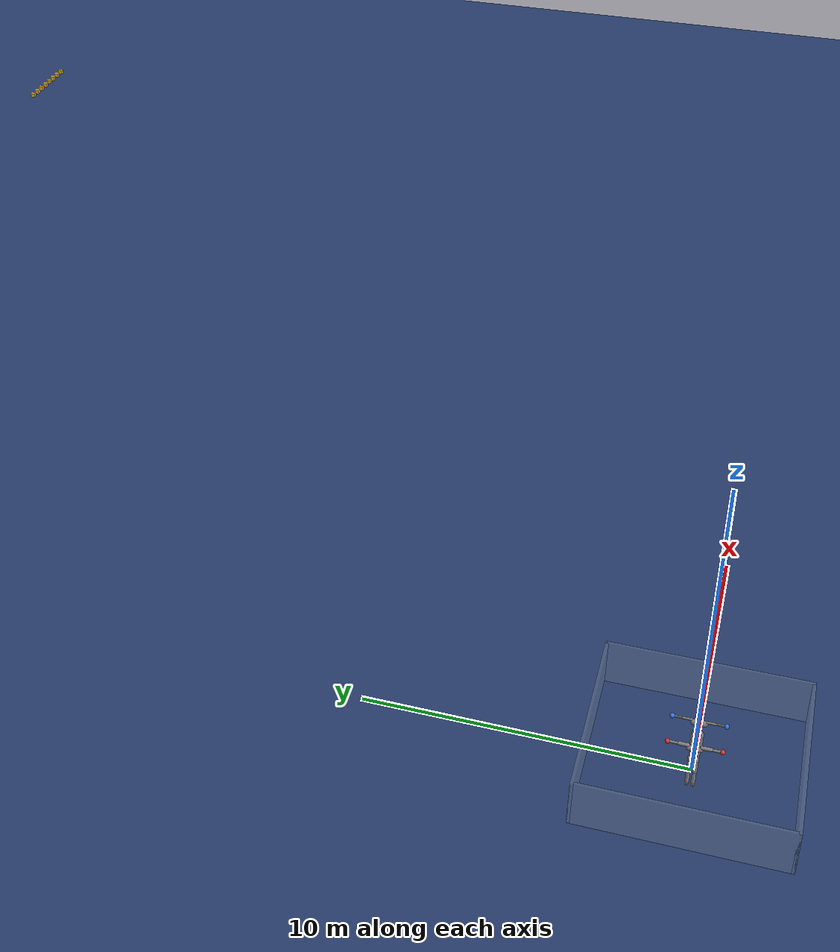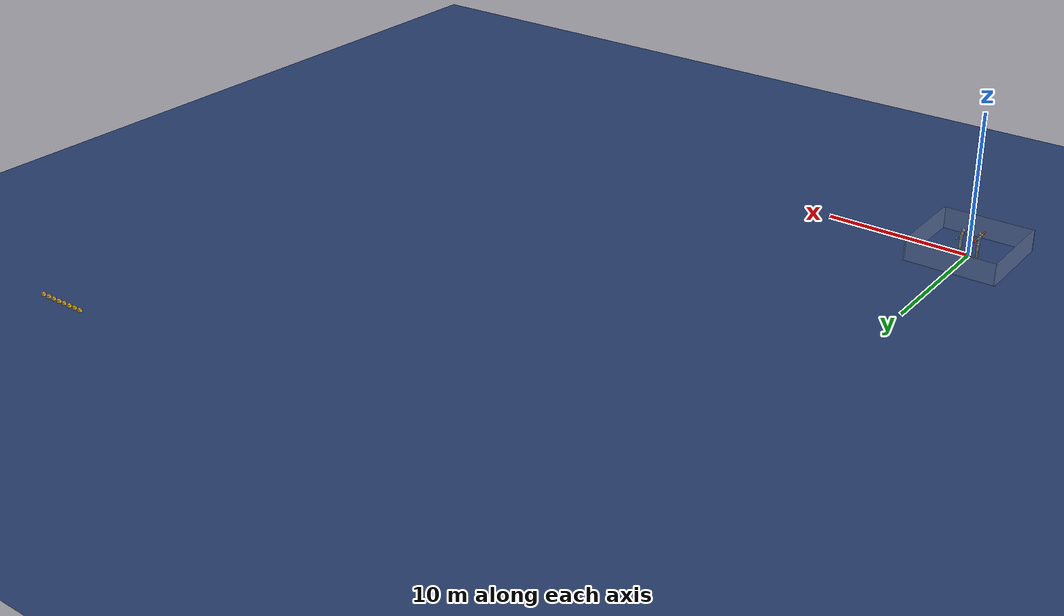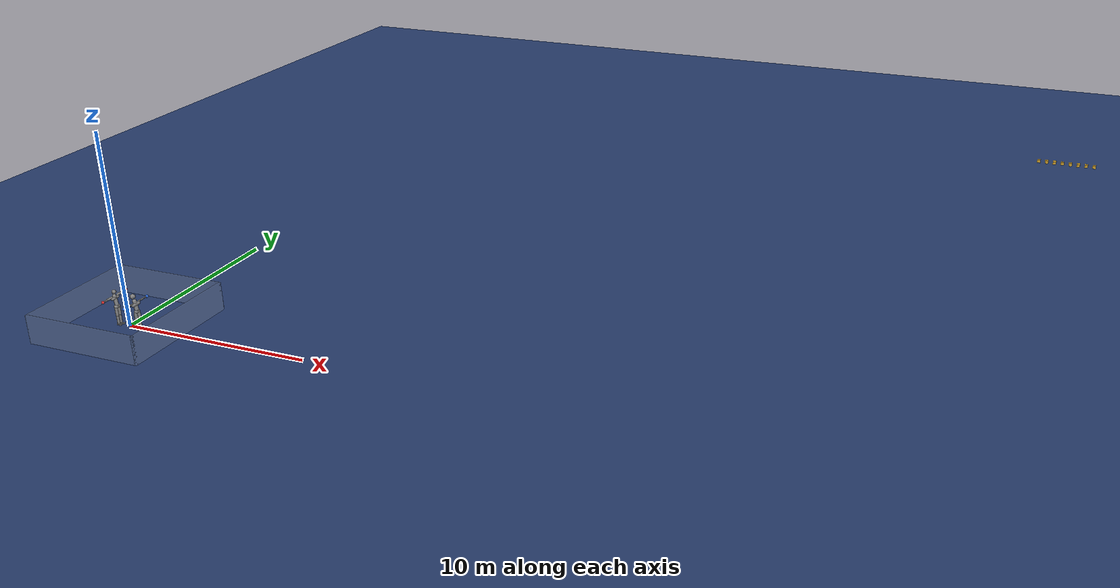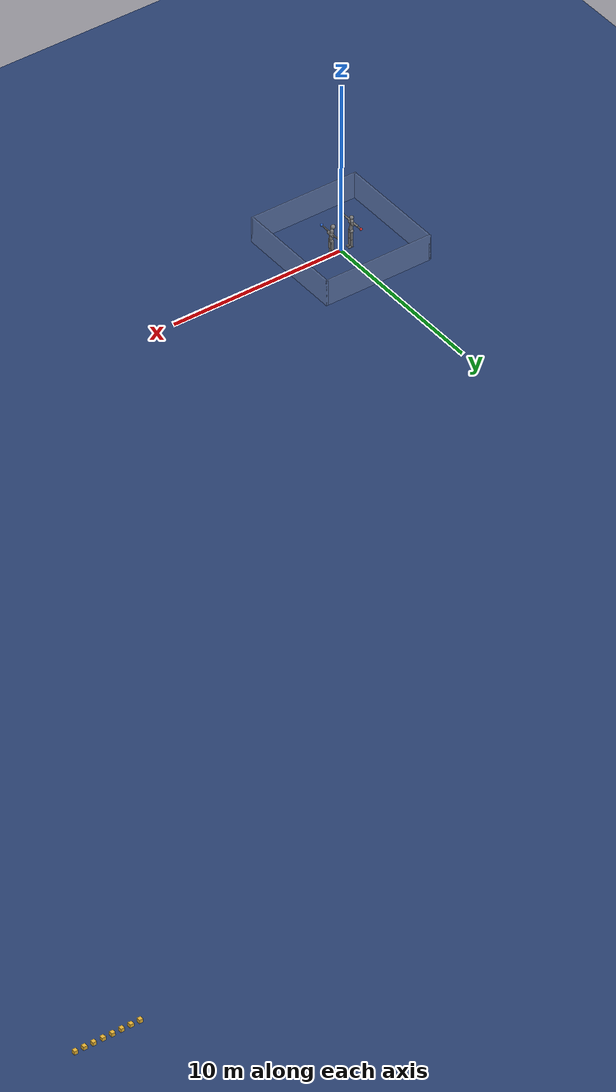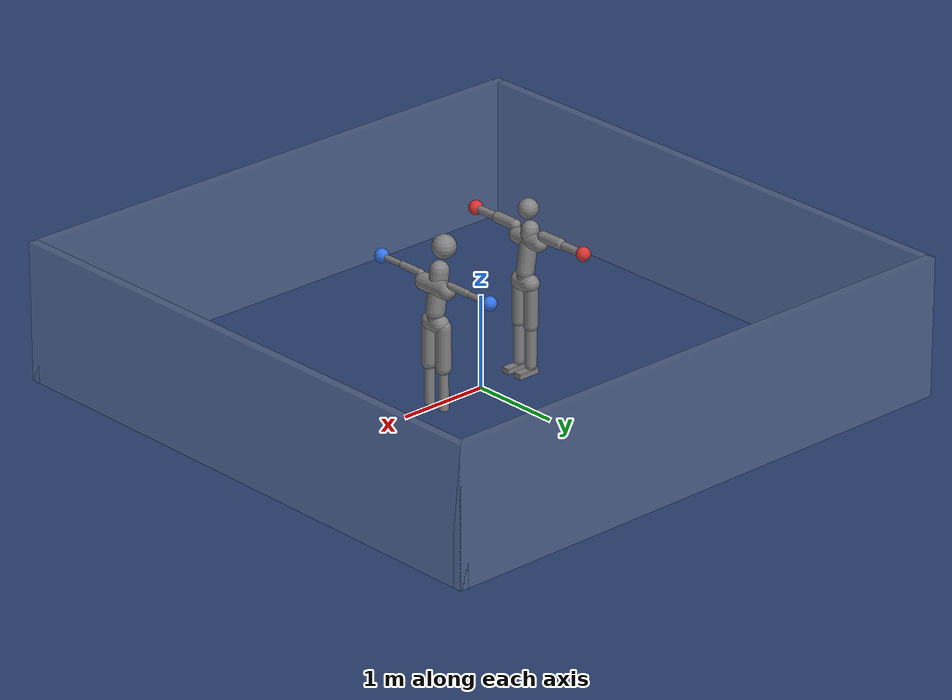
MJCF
<mujoco model="matt_vs_zombie_spar">
  <compiler angle="degree" inertiafromgeom="true" autolimits="true"/>
  <option timestep="0.005" iterations="10" ls_iterations="10" integrator="implicitfast">
    <flag eulerdamp="disable"/>
  </option>
  <default>
    <geom contype="1" conaffinity="1" condim="3" friction="1.0 0.005 0.0001" density="1000" margin="0"/>
    <joint limited="true"/>
    <position ctrllimited="true"/>
  </default>
  <asset>
    <texture name="grid" type="2d" builtin="checker" rgb1=".18 .28 .48" rgb2=".14 .22 .40" width="300" height="300"/>
    <material name="grid" texture="grid" texrepeat="6 6" reflectance="0"/>
  </asset>
  <worldbody>
    <light pos="0 0 5" dir="0 0 -1" directional="true"/>
    <geom name="floor" type="plane" size="0 0 0.05" material="grid" friction="1.0 0.005 0.0001"/>
    <geom name="rope_n" type="box" pos="0.0000 3.1000 0.7500" size="3.1500 0.0500 0.7500" rgba="0.8 0.8 0.8 0.15"/>
    <geom name="rope_s" type="box" pos="0.0000 -3.1000 0.7500" size="3.1500 0.0500 0.7500" rgba="0.8 0.8 0.8 0.15"/>
    <geom name="rope_e" type="box" pos="3.1000 0.0000 0.7500" size="0.0500 3.1500 0.7500" rgba="0.8 0.8 0.8 0.15"/>
    <geom name="rope_w" type="box" pos="-3.1000 0.0000 0.7500" size="0.0500 3.1500 0.7500" rgba="0.8 0.8 0.8 0.15"/>
    <body name="a_pelvis" pos="-0.6000 0.0000 0.9733" quat="1.00000 0 0 0.00000">
      <freejoint name="a_root"/>
      <geom name="a_pelvis_geom" type="capsule" fromto="0.0000 -0.0700 0.0000 0.0000 0.0700 0.0000" size="0.0976" mass="7.5566" />
      <geom name="a_pelvis_up" type="capsule" fromto="0.0000 0.0000 0.0000 -0.0008 0.0000 0.0758" size="0.0878" mass="4.3714" />
      <body name="a_torso" pos="-0.0008 0.0000 0.0958">
        <joint name="a_abdomen_z" type="hinge" axis="0 0 1" range="-45 45" damping="0.5" armature="0.08" stiffness="0"/>
        <joint name="a_abdomen_y" type="hinge" axis="0 1 0" range="-60 30" damping="0.5" armature="0.08" stiffness="0"/>
        <joint name="a_abdomen_x" type="hinge" axis="1 0 0" range="-35 35" damping="0.5" armature="0.08" stiffness="0"/>
        <geom name="a_torso_geom" type="capsule" fromto="0.0000 0.0000 0.0200 -0.0653 -0.0000 0.4511" size="0.0937" mass="29.8200" />
        <geom name="a_chest_geom" type="capsule" fromto="-0.0402 -0.1614 0.3530 -0.0402 0.1614 0.3530" size="0.0843" mass="0.5"/>
        <geom name="a_head_geom" type="sphere" pos="-0.0385 -0.0000 0.6830" size="0.1049" mass="6.8040" />
        <body name="a_upper_arm_l" pos="-0.0503 0.2018 0.4412">
          <joint name="a_shoulder_x_l" type="hinge" axis="1 0 0" range="-170 30" damping="0.5" armature="0.03" stiffness="0"/>
          <joint name="a_shoulder_z_l" type="hinge" axis="0 0 1" range="-110 110" damping="0.5" armature="0.03" stiffness="0"/>
          <geom name="a_upper_arm_l_geom" type="capsule" fromto="0.0000 0.0000 0.0000 0.0000 0.2524 0.0000" size="0.0571" mass="2.3520" />
          <body name="a_forearm_l" pos="0.0000 0.2524 0.0000">
            <joint name="a_elbow_l" type="hinge" axis="0 0 1" range="-150 0" damping="0.5" armature="0.02" stiffness="0"/>
            <geom name="a_forearm_l_geom" type="capsule" fromto="0.0000 0.0000 0.0000 0.0000 0.2567 0.0000" size="0.0408" mass="1.3440" />
            <geom name="a_glove_l" type="sphere" pos="0.0000 0.3242 0.0000" size="0.0750" mass="0.7870" rgba="0.85 0.2 0.2 1"/>
          </body>
        </body>
        <body name="a_upper_arm_r" pos="-0.0503 -0.2018 0.4412">
          <joint name="a_shoulder_x_r" type="hinge" axis="1 0 0" range="-30 170" damping="0.5" armature="0.03" stiffness="0"/>
          <joint name="a_shoulder_z_r" type="hinge" axis="0 0 1" range="-110 110" damping="0.5" armature="0.03" stiffness="0"/>
          <geom name="a_upper_arm_r_geom" type="capsule" fromto="0.0000 0.0000 0.0000 0.0000 -0.2524 0.0000" size="0.0571" mass="2.3520" />
          <body name="a_forearm_r" pos="0.0000 -0.2524 0.0000">
            <joint name="a_elbow_r" type="hinge" axis="0 0 1" range="0 150" damping="0.5" armature="0.02" stiffness="0"/>
            <geom name="a_forearm_r_geom" type="capsule" fromto="0.0000 0.0000 0.0000 0.0000 -0.2567 0.0000" size="0.0408" mass="1.3440" />
            <geom name="a_glove_r" type="sphere" pos="0.0000 -0.3242 0.0000" size="0.0750" mass="0.7870" rgba="0.85 0.2 0.2 1"/>
          </body>
        </body>
      </body>
      <body name="a_thigh_l" pos="0.0008 0.0857 -0.0302">
        <joint name="a_hip_x_l" type="hinge" axis="1 0 0" range="-40 40" damping="0.5" armature="0.1" stiffness="0"/>
        <joint name="a_hip_z_l" type="hinge" axis="0 0 1" range="-35 35" damping="0.5" armature="0.1" stiffness="0"/>
        <joint name="a_hip_y_l" type="hinge" axis="0 1 0" range="-120 30" damping="0.5" armature="0.1" stiffness="0"/>
        <geom name="a_thigh_l_geom" type="capsule" fromto="0.0000 0.0000 0.0000 0.0000 0.0000 -0.4154" size="0.0737" mass="8.4000" />
        <body name="a_shin_l" pos="0.0000 0.0000 -0.4154">
          <joint name="a_knee_l" type="hinge" axis="0 1 0" range="0 150" damping="0.5" armature="0.1" stiffness="0"/>
          <geom name="a_shin_l_geom" type="capsule" fromto="0.0000 0.0000 0.0000 0.0000 0.0000 -0.4309" size="0.0608" mass="3.9060" />
          <body name="a_foot_l" pos="0.0000 0.0000 -0.4309">
            <joint name="a_ankle_y_l" type="hinge" axis="0 1 0" range="-20 50" damping="0.5" armature="0.03" stiffness="0"/>
            <joint name="a_ankle_x_l" type="hinge" axis="1 0 0" range="-25 25" damping="0.5" armature="0.03" stiffness="0"/>
            <geom name="a_foot_l_geom" type="box" pos="0.0581 0.0000 -0.0700" size="0.1262 0.0450 0.0280" mass="1.2180" friction="1.0 0.005 0.0001"/>
            <site name="a_foot_l_site" pos="0.0581 0.0000 -0.0700" size="0.01"/>
          </body>
        </body>
      </body>
      <body name="a_thigh_r" pos="0.0008 -0.0857 -0.0302">
        <joint name="a_hip_x_r" type="hinge" axis="1 0 0" range="-40 40" damping="0.5" armature="0.1" stiffness="0"/>
        <joint name="a_hip_z_r" type="hinge" axis="0 0 1" range="-35 35" damping="0.5" armature="0.1" stiffness="0"/>
        <joint name="a_hip_y_r" type="hinge" axis="0 1 0" range="-120 30" damping="0.5" armature="0.1" stiffness="0"/>
        <geom name="a_thigh_r_geom" type="capsule" fromto="0.0000 0.0000 0.0000 0.0000 0.0000 -0.4154" size="0.0737" mass="8.4000" />
        <body name="a_shin_r" pos="0.0000 0.0000 -0.4154">
          <joint name="a_knee_r" type="hinge" axis="0 1 0" range="0 150" damping="0.5" armature="0.1" stiffness="0"/>
          <geom name="a_shin_r_geom" type="capsule" fromto="0.0000 0.0000 0.0000 0.0000 0.0000 -0.4309" size="0.0608" mass="3.9060" />
          <body name="a_foot_r" pos="0.0000 0.0000 -0.4309">
            <joint name="a_ankle_y_r" type="hinge" axis="0 1 0" range="-20 50" damping="0.5" armature="0.03" stiffness="0"/>
            <joint name="a_ankle_x_r" type="hinge" axis="1 0 0" range="-25 25" damping="0.5" armature="0.03" stiffness="0"/>
            <geom name="a_foot_r_geom" type="box" pos="0.0581 0.0000 -0.0700" size="0.1262 0.0450 0.0280" mass="1.2180" friction="1.0 0.005 0.0001"/>
            <site name="a_foot_r_site" pos="0.0581 0.0000 -0.0700" size="0.01"/>
          </body>
        </body>
      </body>
    </body>
    <body name="b_pelvis" pos="0.6000 0.0000 0.8994" quat="0.00000 0 0 1.00000">
      <freejoint name="b_root"/>
      <geom name="b_pelvis_geom" type="capsule" fromto="0.0000 -0.0700 0.0000 0.0000 0.0700 0.0000" size="0.0937" mass="8.0010" />
      <geom name="b_pelvis_up" type="capsule" fromto="0.0000 0.0000 0.0000 -0.0021 0.0000 0.0858" size="0.0843" mass="4.8500" />
      <body name="b_torso" pos="-0.0021 0.0000 0.1058">
        <joint name="b_abdomen_z" type="hinge" axis="0 0 1" range="-45 45" damping="0.5" armature="0.08" stiffness="0"/>
        <joint name="b_abdomen_y" type="hinge" axis="0 1 0" range="-60 30" damping="0.5" armature="0.08" stiffness="0"/>
        <joint name="b_abdomen_x" type="hinge" axis="1 0 0" range="-35 35" damping="0.5" armature="0.08" stiffness="0"/>
        <geom name="b_torso_geom" type="capsule" fromto="0.0000 0.0000 0.0200 0.0555 0.0000 0.4396" size="0.1001" mass="32.1275" />
        <geom name="b_chest_geom" type="capsule" fromto="0.0001 -0.1682 0.2861 0.0001 0.1682 0.2861" size="0.0901" mass="0.5"/>
        <geom name="b_head_geom" type="sphere" pos="0.1184 0.0000 0.6737" size="0.1250" mass="7.3305" />
        <body name="b_upper_arm_l" pos="0.0001 0.2102 0.3576">
          <joint name="b_shoulder_x_l" type="hinge" axis="1 0 0" range="-170 30" damping="0.5" armature="0.03" stiffness="0"/>
          <joint name="b_shoulder_z_l" type="hinge" axis="0 0 1" range="-110 110" damping="0.5" armature="0.03" stiffness="0"/>
          <geom name="b_upper_arm_l_geom" type="capsule" fromto="0.0000 0.0000 0.0000 0.0000 0.2647 0.0000" size="0.0367" mass="2.5340" />
          <body name="b_forearm_l" pos="0.0000 0.2647 0.0000">
            <joint name="b_elbow_l" type="hinge" axis="0 0 1" range="-150 0" damping="0.5" armature="0.02" stiffness="0"/>
            <geom name="b_forearm_l_geom" type="capsule" fromto="0.0000 0.0000 0.0000 0.0000 0.2417 0.0000" size="0.0299" mass="1.4480" />
            <geom name="b_glove_l" type="sphere" pos="0.0000 0.3092 0.0000" size="0.0750" mass="0.8260" rgba="0.2 0.45 0.9 1"/>
          </body>
        </body>
        <body name="b_upper_arm_r" pos="0.0001 -0.2102 0.3576">
          <joint name="b_shoulder_x_r" type="hinge" axis="1 0 0" range="-30 170" damping="0.5" armature="0.03" stiffness="0"/>
          <joint name="b_shoulder_z_r" type="hinge" axis="0 0 1" range="-110 110" damping="0.5" armature="0.03" stiffness="0"/>
          <geom name="b_upper_arm_r_geom" type="capsule" fromto="0.0000 0.0000 0.0000 0.0000 -0.2647 0.0000" size="0.0367" mass="2.5340" />
          <body name="b_forearm_r" pos="0.0000 -0.2647 0.0000">
            <joint name="b_elbow_r" type="hinge" axis="0 0 1" range="0 150" damping="0.5" armature="0.02" stiffness="0"/>
            <geom name="b_forearm_r_geom" type="capsule" fromto="0.0000 0.0000 0.0000 0.0000 -0.2417 0.0000" size="0.0299" mass="1.4480" />
            <geom name="b_glove_r" type="sphere" pos="0.0000 -0.3092 0.0000" size="0.0750" mass="0.8260" rgba="0.2 0.45 0.9 1"/>
          </body>
        </body>
      </body>
      <body name="b_thigh_l" pos="0.0106 0.1020 -0.0264">
        <joint name="b_hip_x_l" type="hinge" axis="1 0 0" range="-40 40" damping="0.5" armature="0.1" stiffness="0"/>
        <joint name="b_hip_z_l" type="hinge" axis="0 0 1" range="-35 35" damping="0.5" armature="0.1" stiffness="0"/>
        <joint name="b_hip_y_l" type="hinge" axis="0 1 0" range="-120 30" damping="0.5" armature="0.1" stiffness="0"/>
        <geom name="b_thigh_l_geom" type="capsule" fromto="0.0000 0.0000 0.0000 0.0000 0.0000 -0.4306" size="0.0812" mass="9.0500" />
        <body name="b_shin_l" pos="0.0000 0.0000 -0.4306">
          <joint name="b_knee_l" type="hinge" axis="0 1 0" range="0 150" damping="0.5" armature="0.1" stiffness="0"/>
          <geom name="b_shin_l_geom" type="capsule" fromto="0.0000 0.0000 0.0000 0.0000 0.0000 -0.4552" size="0.0535" mass="4.2082" />
          <body name="b_foot_l" pos="0.0000 0.0000 -0.4552">
            <joint name="b_ankle_y_l" type="hinge" axis="0 1 0" range="-20 50" damping="0.5" armature="0.03" stiffness="0"/>
            <joint name="b_ankle_x_l" type="hinge" axis="1 0 0" range="-25 25" damping="0.5" armature="0.03" stiffness="0"/>
            <geom name="b_foot_l_geom" type="box" pos="0.0570 0.0000 -0.0493" size="0.1239 0.0450 0.0280" mass="1.3123" friction="1.0 0.005 0.0001"/>
            <site name="b_foot_l_site" pos="0.0570 0.0000 -0.0493" size="0.01"/>
          </body>
        </body>
      </body>
      <body name="b_thigh_r" pos="0.0106 -0.1020 -0.0264">
        <joint name="b_hip_x_r" type="hinge" axis="1 0 0" range="-40 40" damping="0.5" armature="0.1" stiffness="0"/>
        <joint name="b_hip_z_r" type="hinge" axis="0 0 1" range="-35 35" damping="0.5" armature="0.1" stiffness="0"/>
        <joint name="b_hip_y_r" type="hinge" axis="0 1 0" range="-120 30" damping="0.5" armature="0.1" stiffness="0"/>
        <geom name="b_thigh_r_geom" type="capsule" fromto="0.0000 0.0000 0.0000 0.0000 0.0000 -0.4306" size="0.0812" mass="9.0500" />
        <body name="b_shin_r" pos="0.0000 0.0000 -0.4306">
          <joint name="b_knee_r" type="hinge" axis="0 1 0" range="0 150" damping="0.5" armature="0.1" stiffness="0"/>
          <geom name="b_shin_r_geom" type="capsule" fromto="0.0000 0.0000 0.0000 0.0000 0.0000 -0.4552" size="0.0535" mass="4.2082" />
          <body name="b_foot_r" pos="0.0000 0.0000 -0.4552">
            <joint name="b_ankle_y_r" type="hinge" axis="0 1 0" range="-20 50" damping="0.5" armature="0.03" stiffness="0"/>
            <joint name="b_ankle_x_r" type="hinge" axis="1 0 0" range="-25 25" damping="0.5" armature="0.03" stiffness="0"/>
            <geom name="b_foot_r_geom" type="box" pos="0.0570 0.0000 -0.0493" size="0.1239 0.0450 0.0280" mass="1.3123" friction="1.0 0.005 0.0001"/>
            <site name="b_foot_r_site" pos="0.0570 0.0000 -0.0493" size="0.01"/>
          </body>
        </body>
      </body>
    </body>
    <body name="cube_0" pos="40.0000 40.0000 0.3000"><freejoint name="cube_0"/><geom name="cube_0_geom" type="box" size="0.1 0.1 0.1" mass="1.0" rgba="0.9 0.7 0.2 1"/></body>
    <body name="cube_1" pos="40.5000 40.0000 0.3000"><freejoint name="cube_1"/><geom name="cube_1_geom" type="box" size="0.1 0.1 0.1" mass="1.0" rgba="0.9 0.7 0.2 1"/></body>
    <body name="cube_2" pos="41.0000 40.0000 0.3000"><freejoint name="cube_2"/><geom name="cube_2_geom" type="box" size="0.1 0.1 0.1" mass="1.0" rgba="0.9 0.7 0.2 1"/></body>
    <body name="cube_3" pos="41.5000 40.0000 0.3000"><freejoint name="cube_3"/><geom name="cube_3_geom" type="box" size="0.1 0.1 0.1" mass="1.0" rgba="0.9 0.7 0.2 1"/></body>
    <body name="cube_4" pos="42.0000 40.0000 0.3000"><freejoint name="cube_4"/><geom name="cube_4_geom" type="box" size="0.1 0.1 0.1" mass="1.0" rgba="0.9 0.7 0.2 1"/></body>
    <body name="cube_5" pos="42.5000 40.0000 0.3000"><freejoint name="cube_5"/><geom name="cube_5_geom" type="box" size="0.1 0.1 0.1" mass="1.0" rgba="0.9 0.7 0.2 1"/></body>
    <body name="cube_6" pos="43.0000 40.0000 0.3000"><freejoint name="cube_6"/><geom name="cube_6_geom" type="box" size="0.1 0.1 0.1" mass="1.0" rgba="0.9 0.7 0.2 1"/></body>
    <body name="cube_7" pos="43.5000 40.0000 0.3000"><freejoint name="cube_7"/><geom name="cube_7_geom" type="box" size="0.1 0.1 0.1" mass="1.0" rgba="0.9 0.7 0.2 1"/></body>
  </worldbody>
  <contact>
    <exclude body1="a_pelvis" body2="a_torso"/>
    <exclude body1="a_pelvis" body2="a_thigh_l"/>
    <exclude body1="a_thigh_l" body2="a_shin_l"/>
    <exclude body1="a_shin_l" body2="a_foot_l"/>
    <exclude body1="a_torso" body2="a_upper_arm_l"/>
    <exclude body1="a_upper_arm_l" body2="a_forearm_l"/>
    <exclude body1="a_pelvis" body2="a_thigh_r"/>
    <exclude body1="a_thigh_r" body2="a_shin_r"/>
    <exclude body1="a_shin_r" body2="a_foot_r"/>
    <exclude body1="a_torso" body2="a_upper_arm_r"/>
    <exclude body1="a_upper_arm_r" body2="a_forearm_r"/>
    <exclude body1="b_pelvis" body2="b_torso"/>
    <exclude body1="b_pelvis" body2="b_thigh_l"/>
    <exclude body1="b_thigh_l" body2="b_shin_l"/>
    <exclude body1="b_shin_l" body2="b_foot_l"/>
    <exclude body1="b_torso" body2="b_upper_arm_l"/>
    <exclude body1="b_upper_arm_l" body2="b_forearm_l"/>
    <exclude body1="b_pelvis" body2="b_thigh_r"/>
    <exclude body1="b_thigh_r" body2="b_shin_r"/>
    <exclude body1="b_shin_r" body2="b_foot_r"/>
    <exclude body1="b_torso" body2="b_upper_arm_r"/>
    <exclude body1="b_upper_arm_r" body2="b_forearm_r"/>
  </contact>
  <actuator>
    <position name="a_abdomen_z" joint="a_abdomen_z" kp="473.85" kv="22.113" forcerange="-179.01 179.01" ctrlrange="-0.7854 0.7854"/>
    <position name="a_abdomen_y" joint="a_abdomen_y" kp="473.85" kv="22.113" forcerange="-179.01 179.01" ctrlrange="-1.0472 0.5236"/>
    <position name="a_abdomen_x" joint="a_abdomen_x" kp="473.85" kv="22.113" forcerange="-179.01 179.01" ctrlrange="-0.6109 0.6109"/>
    <position name="a_shoulder_x_l" joint="a_shoulder_x_l" kp="168.48" kv="8.424" forcerange="-105.3 105.3" ctrlrange="-2.9671 0.5236"/>
    <position name="a_shoulder_z_l" joint="a_shoulder_z_l" kp="168.48" kv="8.424" forcerange="-105.3 105.3" ctrlrange="-1.9199 1.9199"/>
    <position name="a_elbow_l" joint="a_elbow_l" kp="115.83" kv="5.791" forcerange="-73.71 73.71" ctrlrange="-2.6180 0.0000"/>
    <position name="a_shoulder_x_r" joint="a_shoulder_x_r" kp="168.48" kv="8.424" forcerange="-105.3 105.3" ctrlrange="-0.5236 2.9671"/>
    <position name="a_shoulder_z_r" joint="a_shoulder_z_r" kp="168.48" kv="8.424" forcerange="-105.3 105.3" ctrlrange="-1.9199 1.9199"/>
    <position name="a_elbow_r" joint="a_elbow_r" kp="115.83" kv="5.791" forcerange="-73.71 73.71" ctrlrange="0.0000 2.6180"/>
    <position name="a_hip_x_l" joint="a_hip_x_l" kp="631.8" kv="31.59" forcerange="-252.72 252.72" ctrlrange="-0.6981 0.6981"/>
    <position name="a_hip_z_l" joint="a_hip_z_l" kp="631.8" kv="31.59" forcerange="-252.72 252.72" ctrlrange="-0.6109 0.6109"/>
    <position name="a_hip_y_l" joint="a_hip_y_l" kp="631.8" kv="31.59" forcerange="-252.72 252.72" ctrlrange="-2.0944 0.5236"/>
    <position name="a_knee_l" joint="a_knee_l" kp="631.8" kv="31.59" forcerange="-273.78 273.78" ctrlrange="0.0000 2.6180"/>
    <position name="a_ankle_y_l" joint="a_ankle_y_l" kp="789.75" kv="31.59" forcerange="-231.66 231.66" ctrlrange="-0.3491 0.8727"/>
    <position name="a_ankle_x_l" joint="a_ankle_x_l" kp="84.24" kv="4.212" forcerange="-63.18 63.18" ctrlrange="-0.4363 0.4363"/>
    <position name="a_hip_x_r" joint="a_hip_x_r" kp="631.8" kv="31.59" forcerange="-252.72 252.72" ctrlrange="-0.6981 0.6981"/>
    <position name="a_hip_z_r" joint="a_hip_z_r" kp="631.8" kv="31.59" forcerange="-252.72 252.72" ctrlrange="-0.6109 0.6109"/>
    <position name="a_hip_y_r" joint="a_hip_y_r" kp="631.8" kv="31.59" forcerange="-252.72 252.72" ctrlrange="-2.0944 0.5236"/>
    <position name="a_knee_r" joint="a_knee_r" kp="631.8" kv="31.59" forcerange="-273.78 273.78" ctrlrange="0.0000 2.6180"/>
    <position name="a_ankle_y_r" joint="a_ankle_y_r" kp="789.75" kv="31.59" forcerange="-231.66 231.66" ctrlrange="-0.3491 0.8727"/>
    <position name="a_ankle_x_r" joint="a_ankle_x_r" kp="84.24" kv="4.212" forcerange="-63.18 63.18" ctrlrange="-0.4363 0.4363"/>
    <position name="b_abdomen_z" joint="b_abdomen_z" kp="453.15" kv="21.147" forcerange="-171.19 171.19" ctrlrange="-0.7854 0.7854"/>
    <position name="b_abdomen_y" joint="b_abdomen_y" kp="453.15" kv="21.147" forcerange="-171.19 171.19" ctrlrange="-1.0472 0.5236"/>
    <position name="b_abdomen_x" joint="b_abdomen_x" kp="453.15" kv="21.147" forcerange="-171.19 171.19" ctrlrange="-0.6109 0.6109"/>
    <position name="b_shoulder_x_l" joint="b_shoulder_x_l" kp="161.12" kv="8.056" forcerange="-100.7 100.7" ctrlrange="-2.9671 0.5236"/>
    <position name="b_shoulder_z_l" joint="b_shoulder_z_l" kp="161.12" kv="8.056" forcerange="-100.7 100.7" ctrlrange="-1.9199 1.9199"/>
    <position name="b_elbow_l" joint="b_elbow_l" kp="110.77" kv="5.538" forcerange="-70.49 70.49" ctrlrange="-2.6180 0.0000"/>
    <position name="b_shoulder_x_r" joint="b_shoulder_x_r" kp="161.12" kv="8.056" forcerange="-100.7 100.7" ctrlrange="-0.5236 2.9671"/>
    <position name="b_shoulder_z_r" joint="b_shoulder_z_r" kp="161.12" kv="8.056" forcerange="-100.7 100.7" ctrlrange="-1.9199 1.9199"/>
    <position name="b_elbow_r" joint="b_elbow_r" kp="110.77" kv="5.538" forcerange="-70.49 70.49" ctrlrange="0.0000 2.6180"/>
    <position name="b_hip_x_l" joint="b_hip_x_l" kp="604.2" kv="30.21" forcerange="-241.68 241.68" ctrlrange="-0.6981 0.6981"/>
    <position name="b_hip_z_l" joint="b_hip_z_l" kp="604.2" kv="30.21" forcerange="-241.68 241.68" ctrlrange="-0.6109 0.6109"/>
    <position name="b_hip_y_l" joint="b_hip_y_l" kp="604.2" kv="30.21" forcerange="-241.68 241.68" ctrlrange="-2.0944 0.5236"/>
    <position name="b_knee_l" joint="b_knee_l" kp="604.2" kv="30.21" forcerange="-261.82 261.82" ctrlrange="0.0000 2.6180"/>
    <position name="b_ankle_y_l" joint="b_ankle_y_l" kp="755.25" kv="30.21" forcerange="-221.54 221.54" ctrlrange="-0.3491 0.8727"/>
    <position name="b_ankle_x_l" joint="b_ankle_x_l" kp="80.56" kv="4.028" forcerange="-60.42 60.42" ctrlrange="-0.4363 0.4363"/>
    <position name="b_hip_x_r" joint="b_hip_x_r" kp="604.2" kv="30.21" forcerange="-241.68 241.68" ctrlrange="-0.6981 0.6981"/>
    <position name="b_hip_z_r" joint="b_hip_z_r" kp="604.2" kv="30.21" forcerange="-241.68 241.68" ctrlrange="-0.6109 0.6109"/>
    <position name="b_hip_y_r" joint="b_hip_y_r" kp="604.2" kv="30.21" forcerange="-241.68 241.68" ctrlrange="-2.0944 0.5236"/>
    <position name="b_knee_r" joint="b_knee_r" kp="604.2" kv="30.21" forcerange="-261.82 261.82" ctrlrange="0.0000 2.6180"/>
    <position name="b_ankle_y_r" joint="b_ankle_y_r" kp="755.25" kv="30.21" forcerange="-221.54 221.54" ctrlrange="-0.3491 0.8727"/>
    <position name="b_ankle_x_r" joint="b_ankle_x_r" kp="80.56" kv="4.028" forcerange="-60.42 60.42" ctrlrange="-0.4363 0.4363"/>
  </actuator>
  <keyframe>
    <key name="stand" qpos="-0.6000 0.0000 0.9536 1.00000 0 0 0.00000 0.0000 0.0000 0.0000 -1.3265 -0.7330 -1.9548 1.3265 0.7330 1.9548 0.0000 0.0000 -0.1763 0.4538 -0.2775 0.0000 0.0000 0.0000 -0.1763 0.4538 -0.2775 0.0000 0.6000 0.0000 0.9688 0.00000 0 0 1.00000 0.0000 0.0000 0.0000 -1.3265 -0.7330 -1.9548 1.3265 0.7330 1.9548 0.0000 0.0000 -0.2267 0.4538 -0.2271 0.0000 0.0000 0.0000 -0.2267 0.4538 -0.2271 0.0000 40.0000 40.0000 0.3000 1 0 0 0 40.5000 40.0000 0.3000 1 0 0 0 41.0000 40.0000 0.3000 1 0 0 0 41.5000 40.0000 0.3000 1 0 0 0 42.0000 40.0000 0.3000 1 0 0 0 42.5000 40.0000 0.3000 1 0 0 0 43.0000 40.0000 0.3000 1 0 0 0 43.5000 40.0000 0.3000 1 0 0 0"/>
  </keyframe>
</mujoco>
